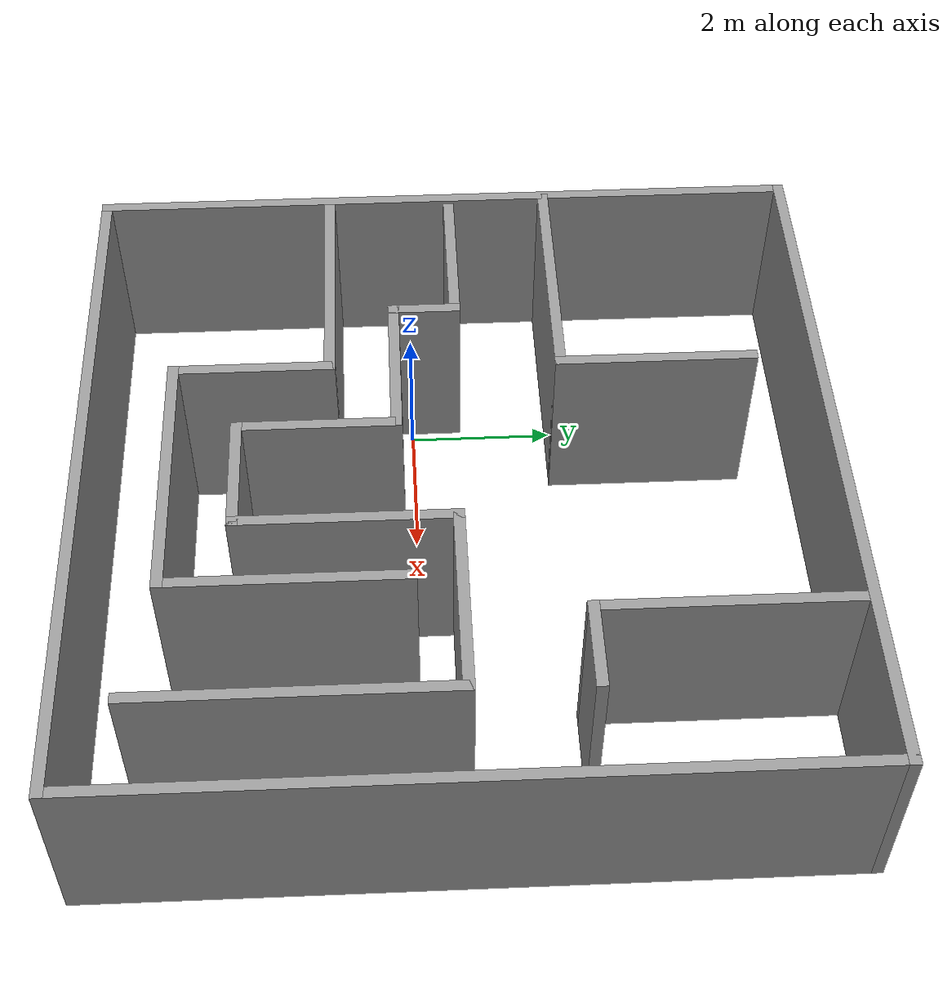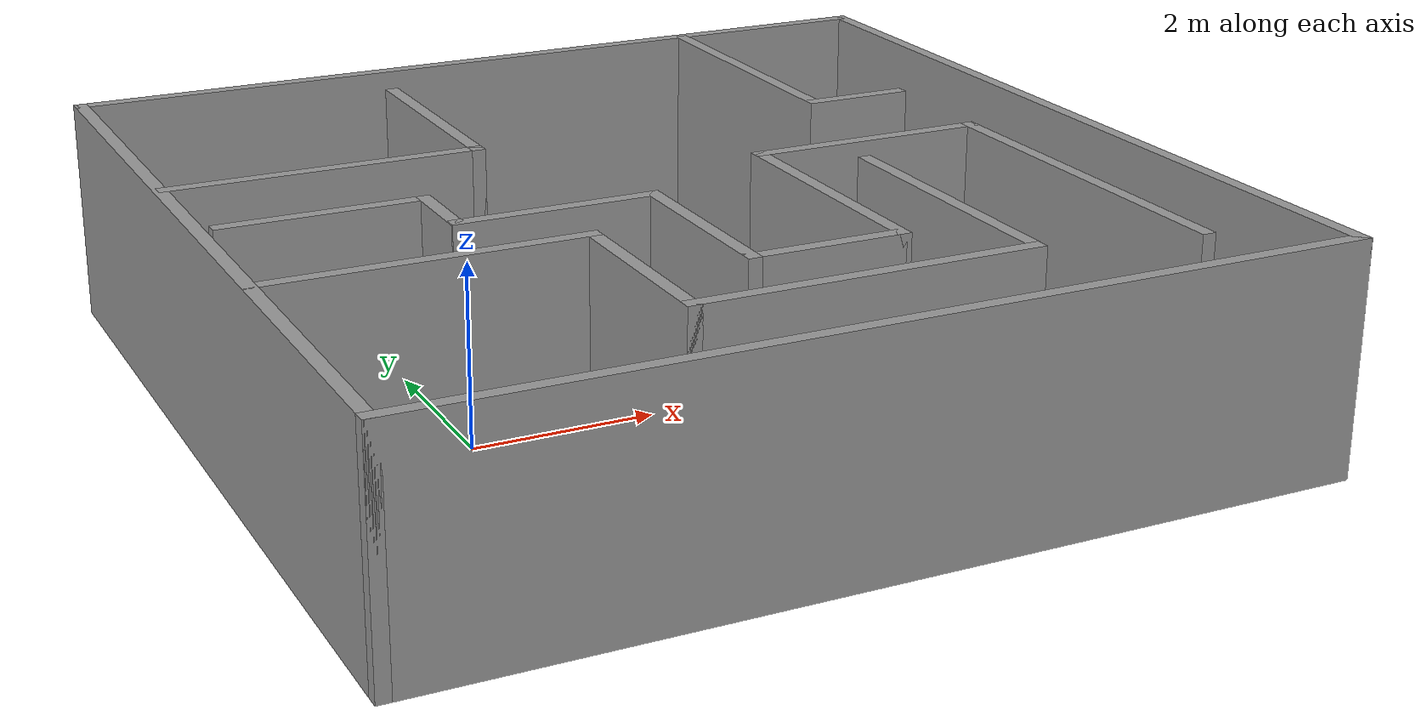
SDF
<?xml version='1.0'?>
<sdf version='1.7'>
  <model name='room.world'>
    <pose>2.425 0.575 0 0 -0 0</pose>
    <link name='Wall_0'>
      <collision name='Wall_0_Collision'>
        <geometry>
          <box>
            <size>10 0.15 2.5</size>
          </box>
        </geometry>
        <pose>0 0 1.25 0 -0 0</pose>
      </collision>
      <visual name='Wall_0_Visual'>
        <pose>0 0 1.25 0 -0 0</pose>
        <geometry>
          <box>
            <size>10 0.15 2.5</size>
          </box>
        </geometry>
        <material>
          <script>
            <uri>file://media/materials/scripts/gazebo.material</uri>
            <name>Gazebo/Grey</name>
          </script>
          <ambient>1 1 1 1</ambient>
        </material>
        <meta>
          <layer>0</layer>
        </meta>
      </visual>
      <pose>-4.925 0 0 0 -0 1.5708</pose>
    </link>
    <link name='Wall_11'>
      <collision name='Wall_11_Collision'>
        <geometry>
          <box>
            <size>3.5 0.15 2.5</size>
          </box>
        </geometry>
        <pose>0 0 1.25 0 -0 0</pose>
      </collision>
      <visual name='Wall_11_Visual'>
        <pose>0 0 1.25 0 -0 0</pose>
        <geometry>
          <box>
            <size>3.5 0.15 2.5</size>
          </box>
        </geometry>
        <material>
          <script>
            <uri>file://media/materials/scripts/gazebo.material</uri>
            <name>Gazebo/Grey</name>
          </script>
          <ambient>1 1 1 1</ambient>
        </material>
        <meta>
          <layer>0</layer>
        </meta>
      </visual>
      <pose>2.60758 3.18169 0 0 -0 -1.5708</pose>
    </link>
    <link name='Wall_12'>
      <collision name='Wall_12_Collision'>
        <geometry>
          <box>
            <size>1.25 0.15 2.5</size>
          </box>
        </geometry>
        <pose>0 0 1.25 0 -0 0</pose>
      </collision>
      <visual name='Wall_12_Visual'>
        <pose>0 0 1.25 0 -0 0</pose>
        <geometry>
          <box>
            <size>1.25 0.15 2.5</size>
          </box>
        </geometry>
        <material>
          <script>
            <uri>file://media/materials/scripts/gazebo.material</uri>
            <name>Gazebo/Grey</name>
          </script>
          <ambient>1 1 1 1</ambient>
        </material>
        <meta>
          <layer>0</layer>
        </meta>
      </visual>
      <pose>3.15758 1.50669 0 0 -0 0</pose>
    </link>
    <link name='Wall_15'>
      <collision name='Wall_15_Collision'>
        <geometry>
          <box>
            <size>3.5 0.15 2.5</size>
          </box>
        </geometry>
        <pose>0 0 1.25 0 -0 0</pose>
      </collision>
      <visual name='Wall_15_Visual'>
        <pose>0 0 1.25 0 -0 0</pose>
        <geometry>
          <box>
            <size>3.5 0.15 2.5</size>
          </box>
        </geometry>
        <material>
          <script>
            <uri>file://media/materials/scripts/gazebo.material</uri>
            <name>Gazebo/Grey</name>
          </script>
          <ambient>1 1 1 1</ambient>
        </material>
        <meta>
          <layer>0</layer>
        </meta>
      </visual>
      <pose>-3.2399 -1.68022 0 0 -0 0</pose>
    </link>
    <link name='Wall_16'>
      <collision name='Wall_16_Collision'>
        <geometry>
          <box>
            <size>2.25 0.15 2.5</size>
          </box>
        </geometry>
        <pose>0 0 1.25 0 -0 0</pose>
      </collision>
      <visual name='Wall_16_Visual'>
        <pose>0 0 1.25 0 -0 0</pose>
        <geometry>
          <box>
            <size>2.25 0.15 2.5</size>
          </box>
        </geometry>
        <material>
          <script>
            <uri>file://media/materials/scripts/gazebo.material</uri>
            <name>Gazebo/Grey</name>
          </script>
          <ambient>1 1 1 1</ambient>
        </material>
        <meta>
          <layer>0</layer>
        </meta>
      </visual>
      <pose>-1.5649 -2.73022 0 0 -0 -1.5708</pose>
    </link>
    <link name='Wall_17'>
      <collision name='Wall_17_Collision'>
        <geometry>
          <box>
            <size>3.75 0.15 2.5</size>
          </box>
        </geometry>
        <pose>0 0 1.25 0 -0 0</pose>
      </collision>
      <visual name='Wall_17_Visual'>
        <pose>0 0 1.25 0 -0 0</pose>
        <geometry>
          <box>
            <size>3.75 0.15 2.5</size>
          </box>
        </geometry>
        <material>
          <script>
            <uri>file://media/materials/scripts/gazebo.material</uri>
            <name>Gazebo/Grey</name>
          </script>
          <ambient>1 1 1 1</ambient>
        </material>
        <meta>
          <layer>0</layer>
        </meta>
      </visual>
      <pose>0.235102 -3.78022 0 0 -0 0</pose>
    </link>
    <link name='Wall_18'>
      <collision name='Wall_18_Collision'>
        <geometry>
          <box>
            <size>3.25 0.15 2.5</size>
          </box>
        </geometry>
        <pose>0 0 1.25 0 -0 0</pose>
      </collision>
      <visual name='Wall_18_Visual'>
        <pose>0 0 1.25 0 -0 0</pose>
        <geometry>
          <box>
            <size>3.25 0.15 2.5</size>
          </box>
        </geometry>
        <material>
          <script>
            <uri>file://media/materials/scripts/gazebo.material</uri>
            <name>Gazebo/Grey</name>
          </script>
          <ambient>1 1 1 1</ambient>
        </material>
        <meta>
          <layer>0</layer>
        </meta>
      </visual>
      <pose>2.0351 -2.23022 0 0 -0 1.5708</pose>
    </link>
    <link name='Wall_2'>
      <collision name='Wall_2_Collision'>
        <geometry>
          <box>
            <size>10 0.15 2.5</size>
          </box>
        </geometry>
        <pose>0 0 1.25 0 -0 0</pose>
      </collision>
      <visual name='Wall_2_Visual'>
        <pose>0 0 1.25 0 -0 0</pose>
        <geometry>
          <box>
            <size>10 0.15 2.5</size>
          </box>
        </geometry>
        <material>
          <script>
            <uri>file://media/materials/scripts/gazebo.material</uri>
            <name>Gazebo/Grey</name>
          </script>
          <ambient>1 1 1 1</ambient>
        </material>
        <meta>
          <layer>0</layer>
        </meta>
      </visual>
      <pose>-0 -4.925 0 0 -0 0</pose>
    </link>
    <link name='Wall_20'>
      <collision name='Wall_20_Collision'>
        <geometry>
          <box>
            <size>2.25 0.15 2.5</size>
          </box>
        </geometry>
        <pose>0 0 1.25 0 -0 0</pose>
      </collision>
      <visual name='Wall_20_Visual'>
        <pose>0 0 1.25 0 -0 0</pose>
        <geometry>
          <box>
            <size>2.25 0.15 2.5</size>
          </box>
        </geometry>
        <material>
          <script>
            <uri>file://media/materials/scripts/gazebo.material</uri>
            <name>Gazebo/Grey</name>
          </script>
          <ambient>1 1 1 1</ambient>
        </material>
        <meta>
          <layer>0</layer>
        </meta>
      </visual>
      <pose>-3.66376 0.049543 0 0 -0 0</pose>
    </link>
    <link name='Wall_21'>
      <collision name='Wall_21_Collision'>
        <geometry>
          <box>
            <size>1 0.15 2.5</size>
          </box>
        </geometry>
        <pose>0 0 1.25 0 -0 0</pose>
      </collision>
      <visual name='Wall_21_Visual'>
        <pose>0 0 1.25 0 -0 0</pose>
        <geometry>
          <box>
            <size>1 0.15 2.5</size>
          </box>
        </geometry>
        <material>
          <script>
            <uri>file://media/materials/scripts/gazebo.material</uri>
            <name>Gazebo/Grey</name>
          </script>
          <ambient>1 1 1 1</ambient>
        </material>
        <meta>
          <layer>0</layer>
        </meta>
      </visual>
      <pose>-2.61376 -0.375457 0 0 -0 -1.5708</pose>
    </link>
    <link name='Wall_22'>
      <collision name='Wall_22_Collision'>
        <geometry>
          <box>
            <size>0.16 0.15 2.5</size>
          </box>
        </geometry>
        <pose>0 0 1.25 0 -0 0</pose>
      </collision>
      <visual name='Wall_22_Visual'>
        <pose>0 0 1.25 0 -0 0</pose>
        <geometry>
          <box>
            <size>0.16 0.15 2.5</size>
          </box>
        </geometry>
        <material>
          <script>
            <uri>file://media/materials/scripts/gazebo.material</uri>
            <name>Gazebo/Grey</name>
          </script>
          <ambient>1 1 1 1</ambient>
        </material>
        <meta>
          <layer>0</layer>
        </meta>
      </visual>
      <pose>-2.60876 -0.800457 0 0 -0 0</pose>
    </link>
    <link name='Wall_23'>
      <collision name='Wall_23_Collision'>
        <geometry>
          <box>
            <size>2.25 0.15 2.5</size>
          </box>
        </geometry>
        <pose>0 0 1.25 0 -0 0</pose>
      </collision>
      <visual name='Wall_23_Visual'>
        <pose>0 0 1.25 0 -0 0</pose>
        <geometry>
          <box>
            <size>2.25 0.15 2.5</size>
          </box>
        </geometry>
        <material>
          <script>
            <uri>file://media/materials/scripts/gazebo.material</uri>
            <name>Gazebo/Grey</name>
          </script>
          <ambient>1 1 1 1</ambient>
        </material>
        <meta>
          <layer>0</layer>
        </meta>
      </visual>
      <pose>-1.55376 -0.800457 0 0 -0 0</pose>
    </link>
    <link name='Wall_24'>
      <collision name='Wall_24_Collision'>
        <geometry>
          <box>
            <size>2.25 0.15 2.5</size>
          </box>
        </geometry>
        <pose>0 0 1.25 0 -0 0</pose>
      </collision>
      <visual name='Wall_24_Visual'>
        <pose>0 0 1.25 0 -0 0</pose>
        <geometry>
          <box>
            <size>2.25 0.15 2.5</size>
          </box>
        </geometry>
        <material>
          <script>
            <uri>file://media/materials/scripts/gazebo.material</uri>
            <name>Gazebo/Grey</name>
          </script>
          <ambient>1 1 1 1</ambient>
        </material>
        <meta>
          <layer>0</layer>
        </meta>
      </visual>
      <pose>-0.503762 -1.85046 0 0 -0 -1.5708</pose>
    </link>
    <link name='Wall_25'>
      <collision name='Wall_25_Collision'>
        <geometry>
          <box>
            <size>1.75 0.15 2.5</size>
          </box>
        </geometry>
        <pose>0 0 1.25 0 -0 0</pose>
      </collision>
      <visual name='Wall_25_Visual'>
        <pose>0 0 1.25 0 -0 0</pose>
        <geometry>
          <box>
            <size>1.75 0.15 2.5</size>
          </box>
        </geometry>
        <material>
          <script>
            <uri>file://media/materials/scripts/gazebo.material</uri>
            <name>Gazebo/Grey</name>
          </script>
          <ambient>1 1 1 1</ambient>
        </material>
        <meta>
          <layer>0</layer>
        </meta>
      </visual>
      <pose>0.296238 -2.90046 0 0 -0 0</pose>
    </link>
    <link name='Wall_26'>
      <collision name='Wall_26_Collision'>
        <geometry>
          <box>
            <size>3 0.15 2.5</size>
          </box>
        </geometry>
        <pose>0 0 1.25 0 -0 0</pose>
      </collision>
      <visual name='Wall_26_Visual'>
        <pose>0 0 1.25 0 -0 0</pose>
        <geometry>
          <box>
            <size>3 0.15 2.5</size>
          </box>
        </geometry>
        <material>
          <script>
            <uri>file://media/materials/scripts/gazebo.material</uri>
            <name>Gazebo/Grey</name>
          </script>
          <ambient>1 1 1 1</ambient>
        </material>
        <meta>
          <layer>0</layer>
        </meta>
      </visual>
      <pose>1.09624 -1.47546 0 0 -0 1.5708</pose>
    </link>
    <link name='Wall_27'>
      <collision name='Wall_27_Collision'>
        <geometry>
          <box>
            <size>2.75 0.15 2.5</size>
          </box>
        </geometry>
        <pose>0 0 1.25 0 -0 0</pose>
      </collision>
      <visual name='Wall_27_Visual'>
        <pose>0 0 1.25 0 -0 0</pose>
        <geometry>
          <box>
            <size>2.75 0.15 2.5</size>
          </box>
        </geometry>
        <material>
          <script>
            <uri>file://media/materials/scripts/gazebo.material</uri>
            <name>Gazebo/Grey</name>
          </script>
          <ambient>1 1 1 1</ambient>
        </material>
        <meta>
          <layer>0</layer>
        </meta>
      </visual>
      <pose>2.39624 -0.050457 0 0 -0 0</pose>
    </link>
    <link name='Wall_28'>
      <collision name='Wall_28_Collision'>
        <geometry>
          <box>
            <size>4.25 0.15 2.5</size>
          </box>
        </geometry>
        <pose>0 0 1.25 0 -0 0</pose>
      </collision>
      <visual name='Wall_28_Visual'>
        <pose>0 0 1.25 0 -0 0</pose>
        <geometry>
          <box>
            <size>4.25 0.15 2.5</size>
          </box>
        </geometry>
        <material>
          <script>
            <uri>file://media/materials/scripts/gazebo.material</uri>
            <name>Gazebo/Grey</name>
          </script>
          <ambient>1 1 1 1</ambient>
        </material>
        <meta>
          <layer>0</layer>
        </meta>
      </visual>
      <pose>3.69624 -2.10046 0 0 -0 -1.5708</pose>
    </link>
    <link name='Wall_4'>
      <collision name='Wall_4_Collision'>
        <geometry>
          <box>
            <size>10 0.15 2.5</size>
          </box>
        </geometry>
        <pose>0 0 1.25 0 -0 0</pose>
      </collision>
      <visual name='Wall_4_Visual'>
        <pose>0 0 1.25 0 -0 0</pose>
        <geometry>
          <box>
            <size>10 0.15 2.5</size>
          </box>
        </geometry>
        <material>
          <script>
            <uri>file://media/materials/scripts/gazebo.material</uri>
            <name>Gazebo/Grey</name>
          </script>
          <ambient>1 1 1 1</ambient>
        </material>
        <meta>
          <layer>0</layer>
        </meta>
      </visual>
      <pose>4.925 0 0 0 -0 1.5708</pose>
    </link>
    <link name='Wall_6'>
      <collision name='Wall_6_Collision'>
        <geometry>
          <box>
            <size>10 0.15 2.5</size>
          </box>
        </geometry>
        <pose>0 0 1.25 0 -0 0</pose>
      </collision>
      <visual name='Wall_6_Visual'>
        <pose>0 0 1.25 0 -0 0</pose>
        <geometry>
          <box>
            <size>10 0.15 2.5</size>
          </box>
        </geometry>
        <material>
          <script>
            <uri>file://media/materials/scripts/gazebo.material</uri>
            <name>Gazebo/Grey</name>
          </script>
          <ambient>1 1 1 1</ambient>
        </material>
        <meta>
          <layer>0</layer>
        </meta>
      </visual>
      <pose>-0 4.925 0 0 -0 0</pose>
    </link>
    <link name='Wall_8'>
      <collision name='Wall_8_Collision'>
        <geometry>
          <box>
            <size>3.5 0.15 2.5</size>
          </box>
        </geometry>
        <pose>0 0 1.25 0 -0 0</pose>
      </collision>
      <visual name='Wall_8_Visual'>
        <pose>0 0 1.25 0 -0 0</pose>
        <geometry>
          <box>
            <size>3.5 0.15 2.5</size>
          </box>
        </geometry>
        <material>
          <script>
            <uri>file://media/materials/scripts/gazebo.material</uri>
            <name>Gazebo/Grey</name>
          </script>
          <ambient>1 1 1 1</ambient>
        </material>
        <meta>
          <layer>0</layer>
        </meta>
      </visual>
      <pose>-3.19967 1.43738 0 0 -0 0</pose>
    </link>
    <link name='Wall_9'>
      <collision name='Wall_9_Collision'>
        <geometry>
          <box>
            <size>2.75 0.15 2.5</size>
          </box>
        </geometry>
        <pose>0 0 1.25 0 -0 0</pose>
      </collision>
      <visual name='Wall_9_Visual'>
        <pose>0 0 1.25 0 -0 0</pose>
        <geometry>
          <box>
            <size>2.75 0.15 2.5</size>
          </box>
        </geometry>
        <material>
          <script>
            <uri>file://media/materials/scripts/gazebo.material</uri>
            <name>Gazebo/Grey</name>
          </script>
          <ambient>1 1 1 1</ambient>
        </material>
        <meta>
          <layer>0</layer>
        </meta>
      </visual>
      <pose>-1.52467 2.73738 0 0 -0 1.5708</pose>
    </link>
    <static>1</static>
  </model>
</sdf>
